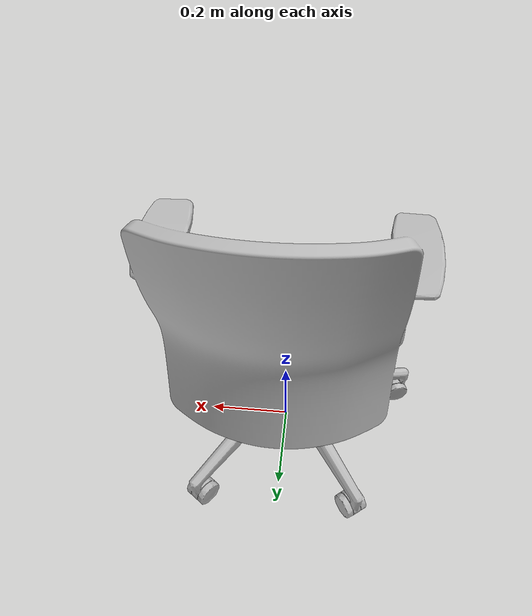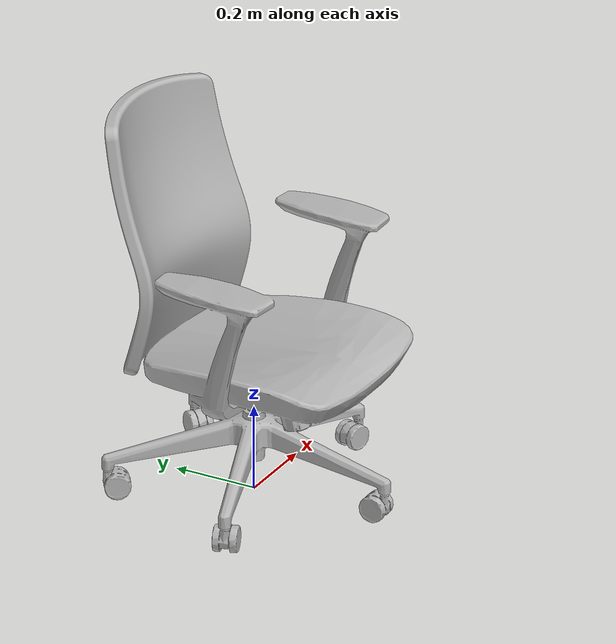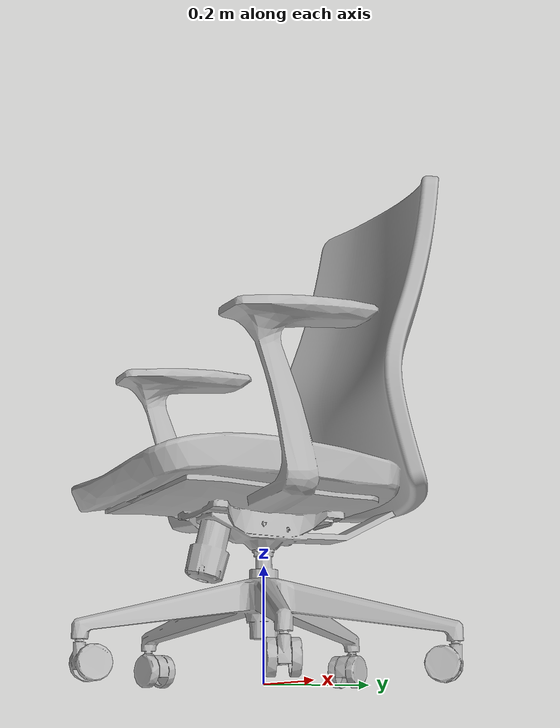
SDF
<sdf version='1.4'>
  <!-- Draw Model -->
  <model name='office_chair_green'>
    <static>true</static>
    <link name="office_chair_green">
      <collision name="collision">
        <geometry>
          <mesh>
            <uri>model://office_chair_green/meshes/STL/office_chair.stl</uri>
          </mesh>
        </geometry>
      </collision>

      <visual name="visual">
        <geometry>
          <mesh>
            <uri>model://office_chair_green/meshes/DAE/office_chair_green.dae</uri>
          </mesh>
        </geometry>
      </visual>
    </link>
  </model>
</sdf>
